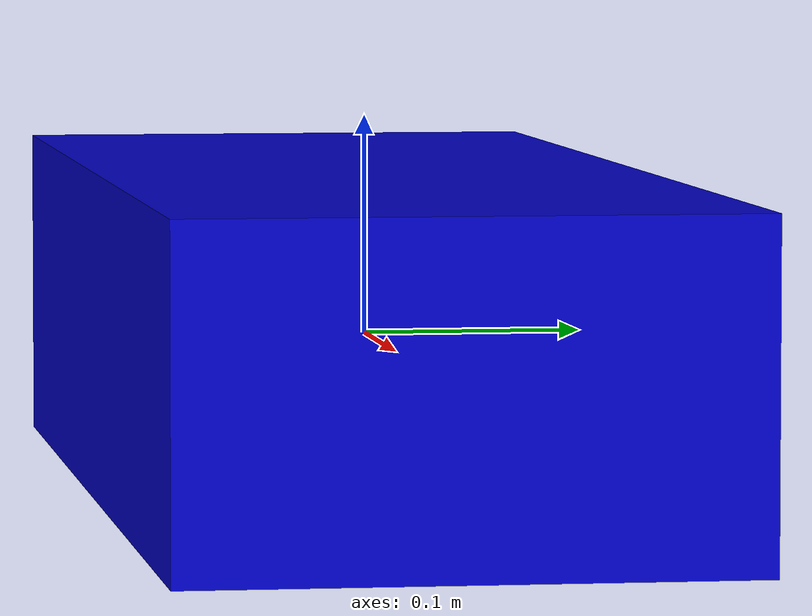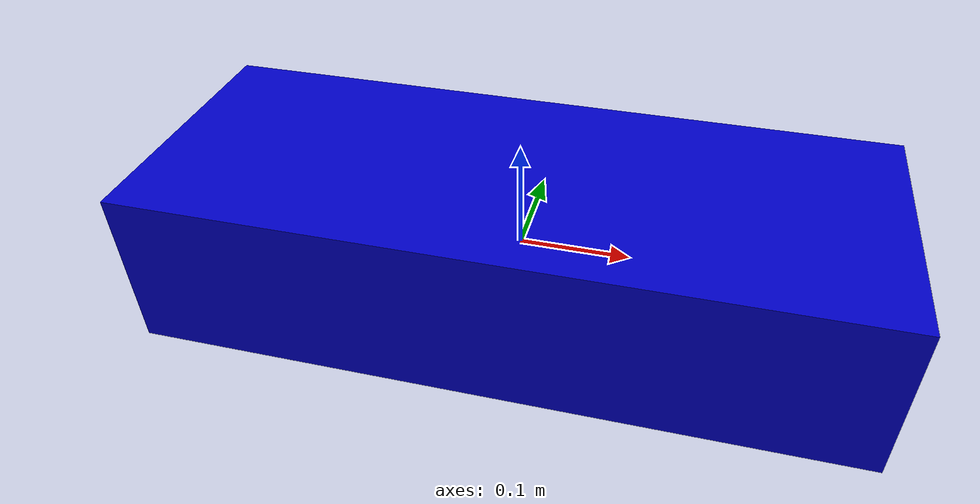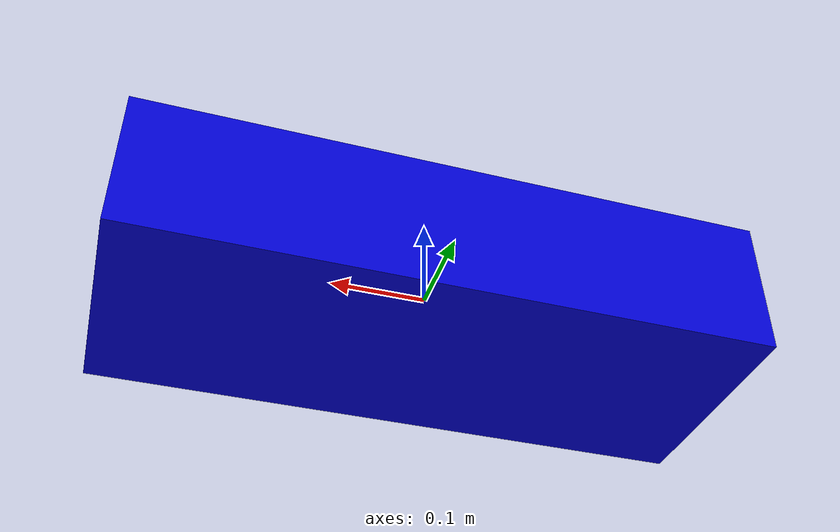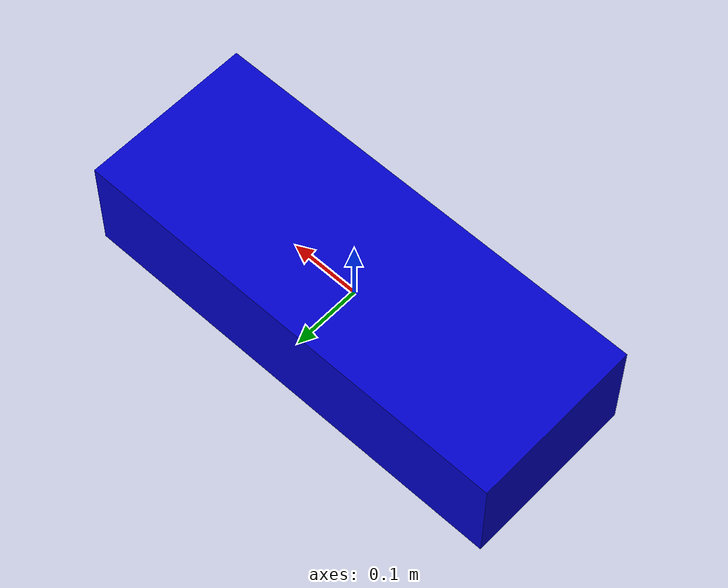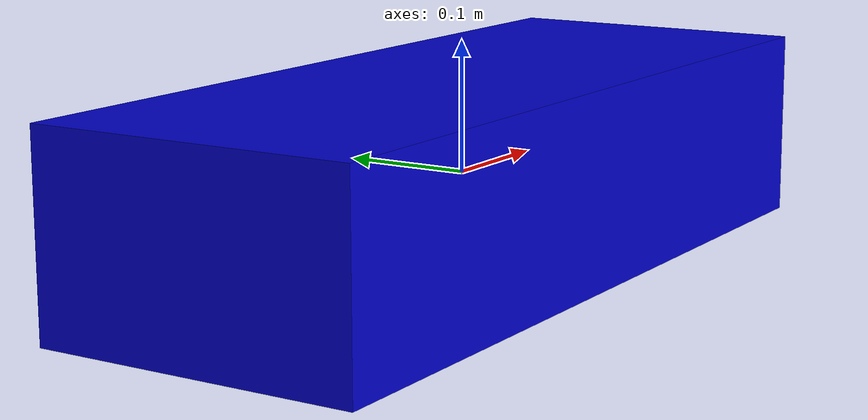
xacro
<?xml version="1.0"?>
<robot name="robot40" xmlns:xacro="http://ros.org/wiki/xacro">

  <xacro:property name="baseWidth" value="0.65" />
  <xacro:property name="baseLength" value="0.25" />
  <xacro:property name="baseHeight" value="0.15" />
  <xacro:property name="baseMass" value="20" />

  <material name="blue">
    <color rgba="0 0 0.8 1"/>
  </material>

  <link name="base_link">
    <visual>
      <geometry>
        <box size="${baseWidth} ${baseLength} ${baseHeight}"/>
      </geometry>
      <material name="blue"/>
    </visual>
    <collision>
      <geometry>
        <box size="${baseWidth} ${baseLength} ${baseHeight}"/>
      </geometry>
    </collision>
    <inertial>
      <mass value="${baseMass}" />
      <inertia ixx="1.0" ixy="0.0" ixz="0.0" iyy="1.0" iyz="0.0" izz="1.0" />
    </inertial>
  </link>

  <!-- Gazebo plugin for ROS Control -->
  <gazebo>
    <plugin name="gazebo_ros_control" filename="libgazebo_ros_control.so">
      <robotNamespace>/</robotNamespace>
    </plugin>
  </gazebo>

</robot>
